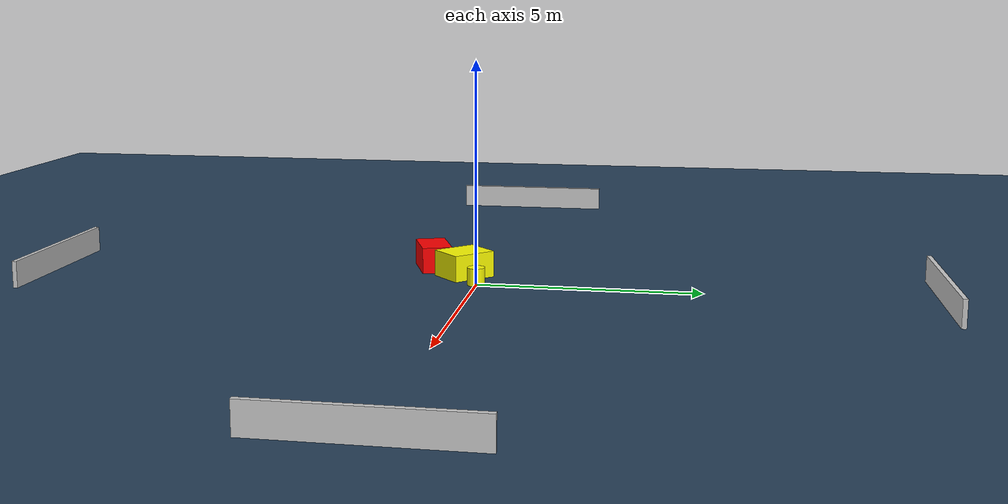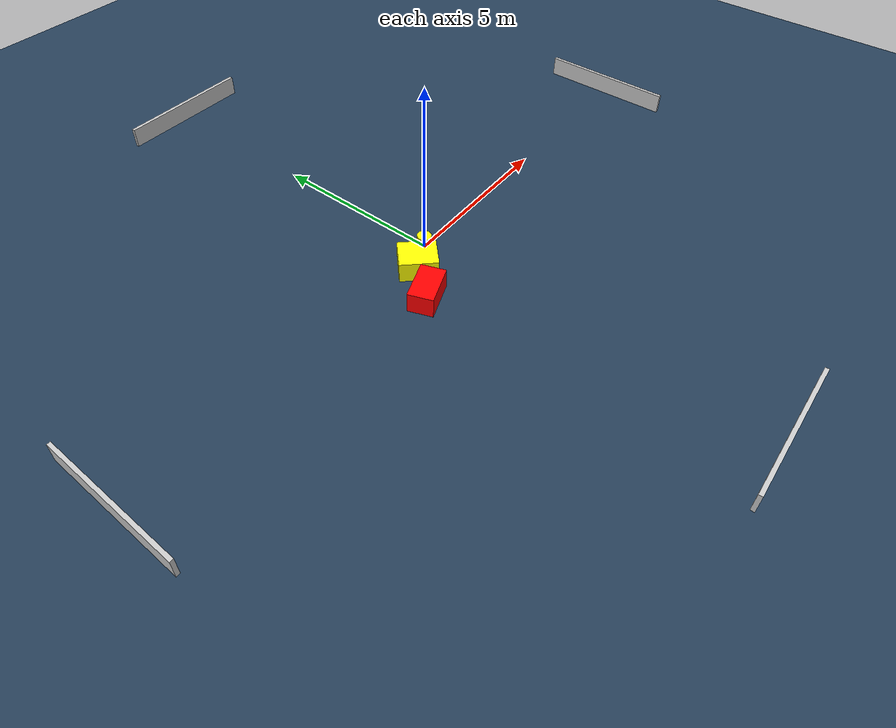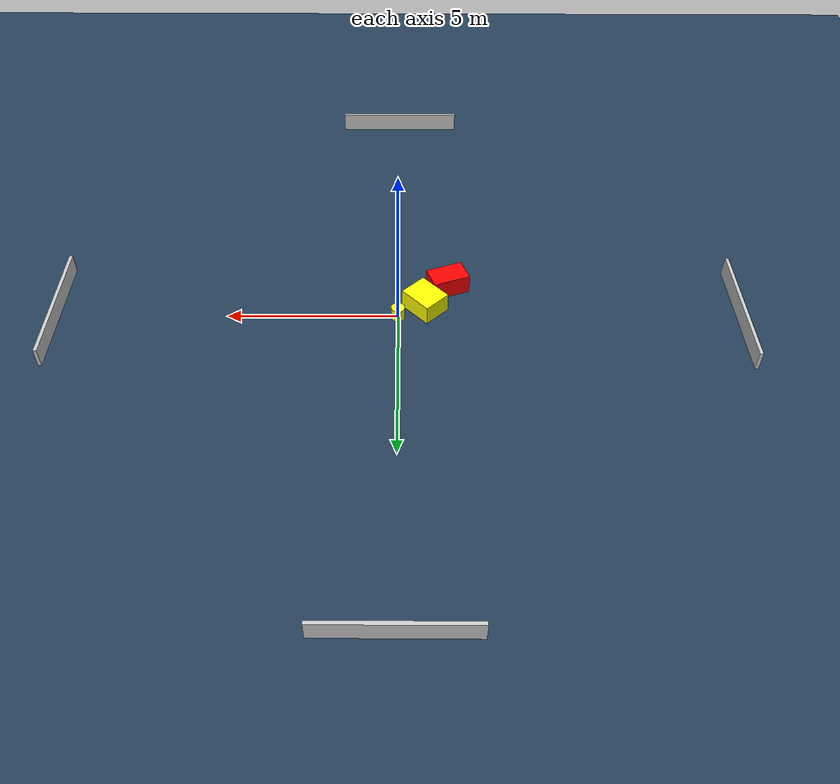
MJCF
<?xml version="1.0" ?>
<mujoco model="generated_environment">
  <option timestep="0.01" integrator="RK4" cone="elliptic"/>
  <default>
    <geom density="1"/>
  </default>
  <asset>
    <texture builtin="gradient" height="3072" name="skybox" rgb1="0.3 0.5 0.7" rgb2="0 0 0" type="skybox" width="512"/>
    <texture builtin="checker" height="300" name="groundplane" rgb1="0.2 0.3 0.4" rgb2="0.1 0.2 0.3" type="2d" width="300"/>
    <material name="groundplane" reflectance="0.2" texrepeat="5 5" texture="groundplane"/>
  </asset>
  <worldbody>
    <light dir="0 0 -1" directional="true" pos="0 0 1.5"/>
    <geom condim="3" friction="0.5 0.005 0.001" material="groundplane" name="floor" pos="0 0 0" size="0 0 0.05" type="plane"/>
    <body name="walls">
      <geom name="wall_1" condim="4" pos="-10.0 0.0 0.3" rgba="0.800000011920929 0.800000011920929 0.800000011920929 1.0" size="0.05 2.0 0.3" type="box"/>
      <geom name="wall_2" condim="4" pos="10.0 0.0 0.3" rgba="0.800000011920929 0.800000011920929 0.800000011920929 1.0" size="0.05 2.0 0.3" type="box"/>
      <geom name="wall_3" condim="4" pos="0.0 -10.0 0.3" rgba="0.800000011920929 0.800000011920929 0.800000011920929 1.0" size="2.0 0.05 0.3" type="box"/>
      <geom name="wall_4" condim="4" pos="0.0 10.0 0.3" rgba="0.800000011920929 0.800000011920929 0.800000011920929 1.0" size="2.0 0.05 0.3" type="box"/>
    </body>
    <body name="robot">
      <joint name="joint_x" type="slide" pos="0 0 0" axis="1 0 0"/>
      <joint name="joint_y" type="slide" pos="0 0 0" axis="0 1 0"/>
      <geom name="robot" type="cylinder" pos="0.0 0.0 0.2" size="0.2 0.2 0.0" mass="5.0" friction="1.0 0.005 0.0001" condim="4" rgba="1.0 1.0 0.0 1.0"/>
    </body>
    <body name="obstacle_1_movable">
      <geom name="obstacle_1_movable" condim="4" pos="-0.7937752483464295 -0.41023243366109385 0.3" euler="0 0 133.67139066604523" friction="0.0 0.005 0.001" rgba="1.0 1.0 0.0 1.0" size="0.5223159922077616 0.43322140564610806 0.3" type="box" mass="0.1"/>
      <joint type="free"/>
    </body>
    <body name="obstacle_2_static">
      <geom name="obstacle_2_static" condim="4" pos="-1.4862047700708172 -1.2652778909796625 0.3" euler="0 0 200.42378686212453" friction="0.0 0.005 0.001" rgba="1.0 0.0 0.0 1.0" size="0.5588227188332258 0.346926230042091 0.3" type="box"/>
    </body>
  </worldbody>
  <actuator>
    <motor name="actuator_x" joint="joint_x" gear="1" ctrlrange="-1 1"/>
    <motor name="actuator_y" joint="joint_y" gear="1" ctrlrange="-1 1"/>
  </actuator>
</mujoco>
